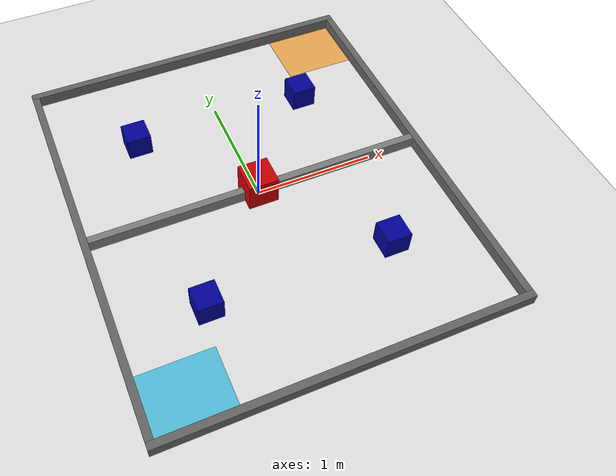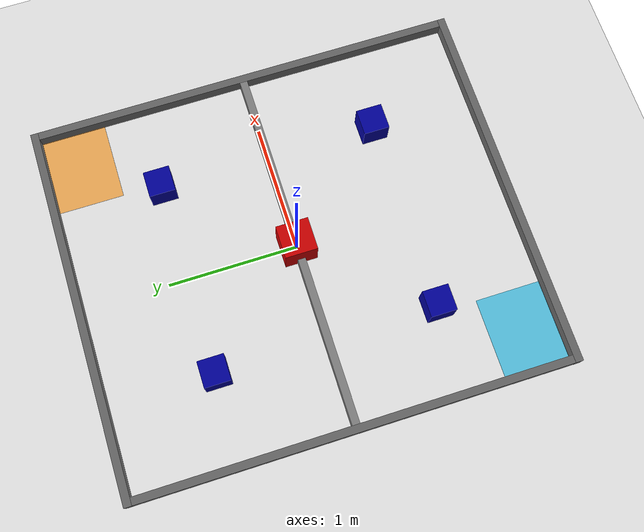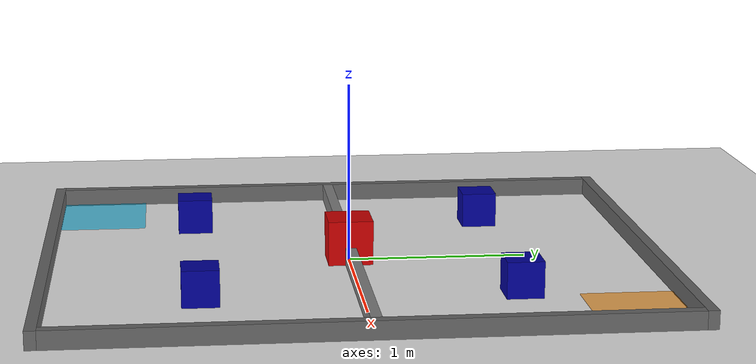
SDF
<?xml version="1.0" ?>
<sdf version="1.9">
  <world name="piston_cup_arena">

    <physics name="1ms" type="ignored">
      <max_step_size>0.001</max_step_size>
      <real_time_factor>1.0</real_time_factor>
    </physics>

    <plugin filename="gz-sim-physics-system" name="gz::sim::systems::Physics"></plugin>
    <plugin filename="gz-sim-user-commands-system" name="gz::sim::systems::UserCommands"></plugin>
    <plugin filename="gz-sim-scene-broadcaster-system" name="gz::sim::systems::SceneBroadcaster"></plugin>
    <plugin filename="gz-sim-sensors-system" name="gz::sim::systems::Sensors">
      <render_engine>ogre2</render_engine>
    </plugin>
    <plugin filename="gz-sim-contact-system" name="gz::sim::systems::Contact"></plugin>

    <light type="directional" name="sun">
      <cast_shadows>true</cast_shadows>
      <pose>0 0 10 0 0 0</pose>
      <diffuse>0.8 0.8 0.8 1</diffuse>
      <specular>0.2 0.2 0.2 1</specular>
      <attenuation>
        <range>1000</range>
        <constant>0.9</constant>
        <linear>0.01</linear>
        <quadratic>0.001</quadratic>
      </attenuation>
      <direction>-0.5 0.1 -0.9</direction>
    </light>

    <model name="ground_plane">
      <static>true</static>
      <link name="link">
        <collision name="collision">
          <geometry><plane><normal>0 0 1</normal><size>10 10</size></plane></geometry>
        </collision>
        <visual name="visual">
          <geometry><plane><normal>0 0 1</normal><size>10 10</size></plane></geometry>
          <material>
            <ambient>0.9 0.9 0.9 1</ambient>
            <diffuse>0.9 0.9 0.9 1</diffuse>
          </material>
        </visual>
      </link>
    </model>

    <model name="wall_north">
      <static>true</static>
      <pose>0 1.68 0.05 0 0 0</pose>
      <link name="link">
        <collision name="collision"><geometry><box><size>2.92 0.06 0.10</size></box></geometry></collision>
        <visual name="visual">
          <geometry><box><size>2.92 0.06 0.10</size></box></geometry>
          <material><ambient>0.4 0.4 0.4 1</ambient><diffuse>0.4 0.4 0.4 1</diffuse></material>
        </visual>
      </link>
    </model>

    <model name="wall_south">
      <static>true</static>
      <pose>0 -1.68 0.05 0 0 0</pose>
      <link name="link">
        <collision name="collision"><geometry><box><size>2.92 0.06 0.10</size></box></geometry></collision>
        <visual name="visual">
          <geometry><box><size>2.92 0.06 0.10</size></box></geometry>
          <material><ambient>0.4 0.4 0.4 1</ambient><diffuse>0.4 0.4 0.4 1</diffuse></material>
        </visual>
      </link>
    </model>

    <model name="wall_east">
      <static>true</static>
      <pose>1.43 0 0.05 0 0 0</pose>
      <link name="link">
        <collision name="collision"><geometry><box><size>0.06 3.30 0.10</size></box></geometry></collision>
        <visual name="visual">
          <geometry><box><size>0.06 3.30 0.10</size></box></geometry>
          <material><ambient>0.4 0.4 0.4 1</ambient><diffuse>0.4 0.4 0.4 1</diffuse></material>
        </visual>
      </link>
    </model>

    <model name="wall_west">
      <static>true</static>
      <pose>-1.43 0 0.05 0 0 0</pose>
      <link name="link">
        <collision name="collision"><geometry><box><size>0.06 3.30 0.10</size></box></geometry></collision>
        <visual name="visual">
          <geometry><box><size>0.06 3.30 0.10</size></box></geometry>
          <material><ambient>0.4 0.4 0.4 1</ambient><diffuse>0.4 0.4 0.4 1</diffuse></material>
        </visual>
      </link>
    </model>

    <!-- ==================== MIDDLE DIVIDER (marking line, not a real barrier) ==================== -->
    <model name="middle_divider">
      <static>true</static>
      <pose>0 0 0.05 0 0 0</pose>
      <link name="link">
        <collision name="collision"><geometry><box><size>2.80 0.06 0.10</size></box></geometry></collision>
        <visual name="visual">
          <geometry><box><size>2.80 0.06 0.10</size></box></geometry>
          <material><ambient>0.5 0.5 0.5 1</ambient><diffuse>0.5 0.5 0.5 1</diffuse></material>
        </visual>
      </link>
    </model>

    <!-- ==================== START ZONES (visual only, no collision) ====================
         60 cm x 50 cm each, corner-located -->

    <model name="shato_start_zone">
      <static>true</static>
      <pose>1.10 1.40 0.003 0 0 0</pose>
      <link name="link">
        <visual name="visual">
          <geometry><box><size>0.60 0.50 0.005</size></box></geometry>
          <material><ambient>1.0 0.55 0.0 0.6</ambient><diffuse>1.0 0.55 0.0 0.6</diffuse></material>
        </visual>
      </link>
    </model>

    <model name="ulker_start_zone">
      <static>true</static>
      <pose>-1.10 -1.40 0.003 0 0 0</pose>
      <link name="link">
        <visual name="visual">
          <geometry><box><size>0.60 0.50 0.005</size></box></geometry>
          <material><ambient>0.0 0.7 0.9 0.6</ambient><diffuse>0.0 0.7 0.9 0.6</diffuse></material>
        </visual>
      </link>
    </model>

    <!-- ==================== BLUE BOXES (assumed 20x20x20 cm each) ==================== -->

    <model name="blue_box_1">
      <pose>-0.75 0.85 0.10 0 0 0</pose>
      <link name="link">
        <inertial><mass>0.2</mass><inertia><ixx>0.001</ixx><iyy>0.001</iyy><izz>0.001</izz><ixy>0</ixy><ixz>0</ixz><iyz>0</iyz></inertia></inertial>
        <collision name="collision"><geometry><box><size>0.20 0.20 0.20</size></box></geometry></collision>
        <visual name="visual">
          <geometry><box><size>0.20 0.20 0.20</size></box></geometry>
          <material><ambient>0.0 0.0 0.6 1</ambient><diffuse>0.0 0.0 0.6 1</diffuse></material>
        </visual>
      </link>
    </model>

    <model name="blue_box_2">
      <pose>0.75 0.85 0.10 0 0 0</pose>
      <link name="link">
        <inertial><mass>0.2</mass><inertia><ixx>0.001</ixx><iyy>0.001</iyy><izz>0.001</izz><ixy>0</ixy><ixz>0</ixz><iyz>0</iyz></inertia></inertial>
        <collision name="collision"><geometry><box><size>0.20 0.20 0.20</size></box></geometry></collision>
        <visual name="visual">
          <geometry><box><size>0.20 0.20 0.20</size></box></geometry>
          <material><ambient>0.0 0.0 0.6 1</ambient><diffuse>0.0 0.0 0.6 1</diffuse></material>
        </visual>
      </link>
    </model>

    <model name="blue_box_3">
      <pose>-0.75 -0.85 0.10 0 0 0</pose>
      <link name="link">
        <inertial><mass>0.2</mass><inertia><ixx>0.001</ixx><iyy>0.001</iyy><izz>0.001</izz><ixy>0</ixy><ixz>0</ixz><iyz>0</iyz></inertia></inertial>
        <collision name="collision"><geometry><box><size>0.20 0.20 0.20</size></box></geometry></collision>
        <visual name="visual">
          <geometry><box><size>0.20 0.20 0.20</size></box></geometry>
          <material><ambient>0.0 0.0 0.6 1</ambient><diffuse>0.0 0.0 0.6 1</diffuse></material>
        </visual>
      </link>
    </model>

    <model name="blue_box_4">
      <pose>0.75 -0.85 0.10 0 0 0</pose>
      <link name="link">
        <inertial><mass>0.2</mass><inertia><ixx>0.001</ixx><iyy>0.001</iyy><izz>0.001</izz><ixy>0</ixy><ixz>0</ixz><iyz>0</iyz></inertia></inertial>
        <collision name="collision"><geometry><box><size>0.20 0.20 0.20</size></box></geometry></collision>
        <visual name="visual">
          <geometry><box><size>0.20 0.20 0.20</size></box></geometry>
          <material><ambient>0.0 0.0 0.6 1</ambient><diffuse>0.0 0.0 0.6 1</diffuse></material>
        </visual>
      </link>
    </model>

    <!-- ==================== RED (shared/neutral) BOX — 25x25x25 cm, assumed ==================== -->
    <model name="red_box">
      <pose>0 0 0.125 0 0 0</pose>
      <link name="link">
        <inertial><mass>0.25</mass><inertia><ixx>0.001</ixx><iyy>0.001</iyy><izz>0.001</izz><ixy>0</ixy><ixz>0</ixz><iyz>0</iyz></inertia></inertial>
        <collision name="collision"><geometry><box><size>0.25 0.25 0.25</size></box></geometry></collision>
        <visual name="visual">
          <geometry><box><size>0.25 0.25 0.25</size></box></geometry>
          <material><ambient>0.8 0.0 0.0 1</ambient><diffuse>0.8 0.0 0.0 1</diffuse></material>
        </visual>
      </link>
    </model>

  </world>
</sdf>
